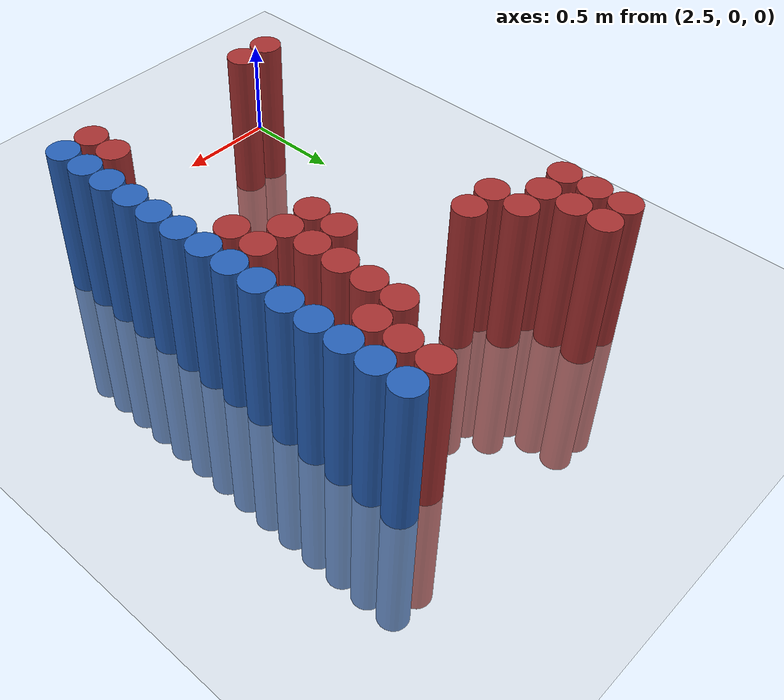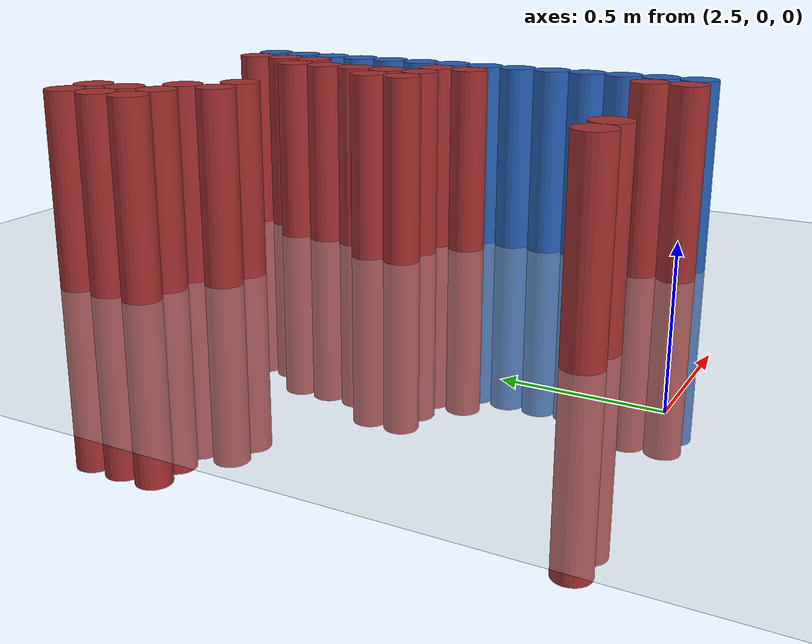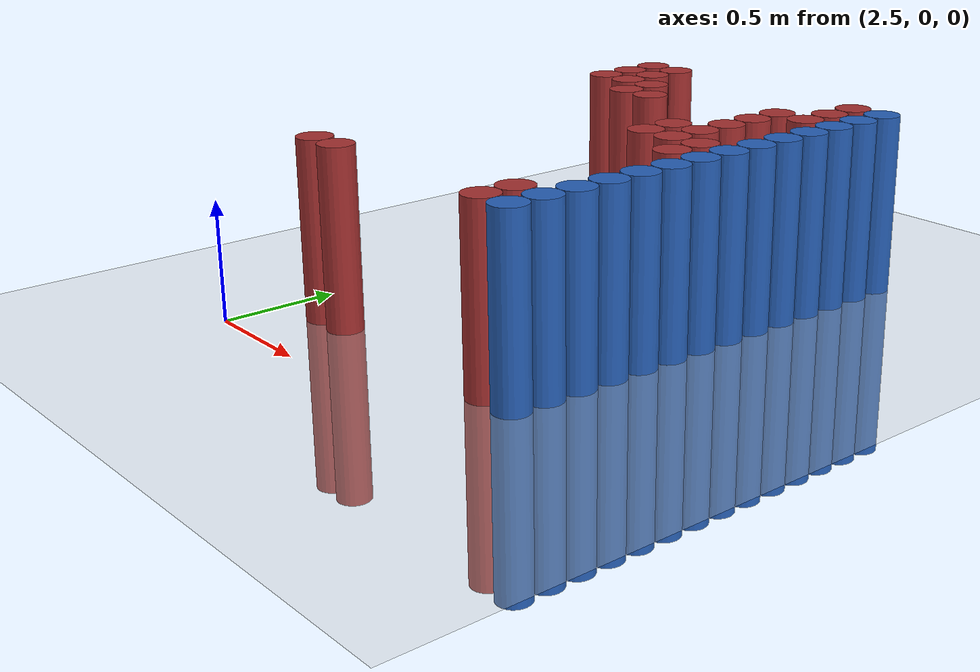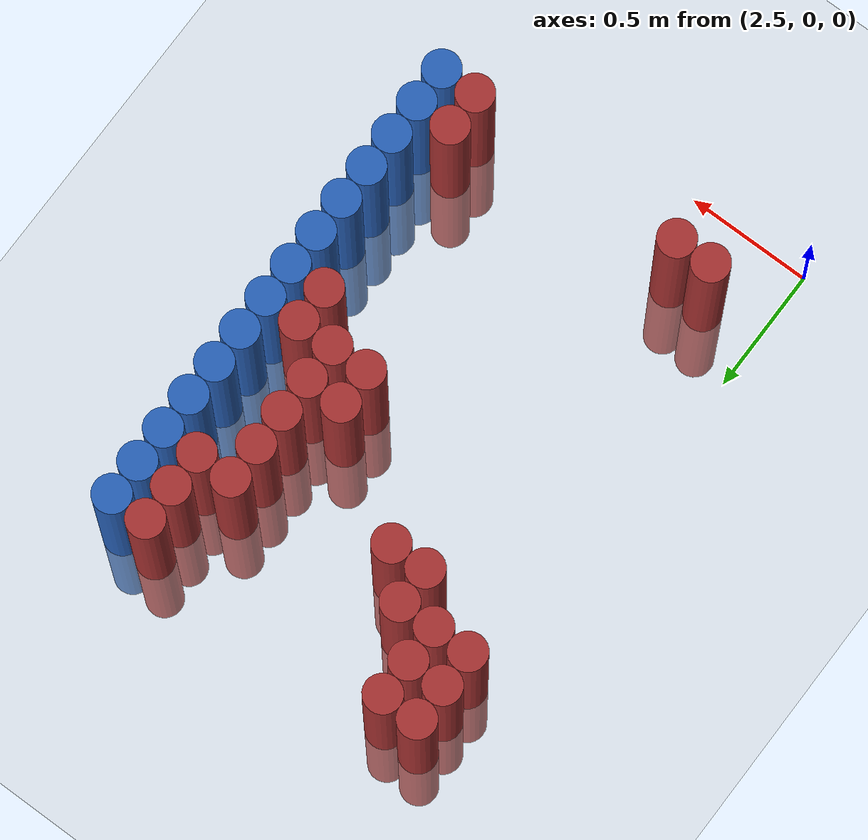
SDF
<sdf version="1.6">
 <world name="default">
  <model name="ground_plane">
   <static>1</static>
   <link name="link">
    <collision name="collision">
     <geometry><plane><normal>0 0 1</normal><size>100 100</size></plane></geometry>
     <surface><friction><ode><mu>100</mu><mu2>50</mu2></ode></friction></surface>
    </collision>
    <visual name="visual">
     <cast_shadows>0</cast_shadows>
     <geometry><plane><normal>0 0 1</normal><size>100 100</size></plane></geometry>
     <material>
      <script><uri>file://media/materials/scripts/gazebo.material</uri><name>Gazebo/Grey</name></script>
     </material>
    </visual>
   </link>
  </model>
  <model name="unit_cylinder_120">
   <static>1</static>
   <pose>3.925000 0.475000 0.000000 0.000000 0.000000 0.000000</pose>
   <link name="link">
    <inertial>
     <mass>1</mass>
     <inertia><ixx>0.145833</ixx><ixy>0</ixy><ixz>0</ixz><iyy>0.145833</iyy><iyz>0</iyz><izz>0.125</izz></inertia>
    </inertial>
    <collision name="collision">
     <geometry><cylinder><radius>0.075000</radius><length>1.5</length></cylinder></geometry>
    </collision>
    <visual name="visual">
     <geometry><cylinder><radius>0.075000</radius><length>1.5</length></cylinder></geometry>
     <material>
      <ambient>0.152000 0.379000 0.720000 1</ambient>
      <diffuse>0.152000 0.379000 0.720000 1</diffuse>
     </material>
     <material>
      <script><name>Gazebo/Grey</name><uri>file://media/materials/scripts/gazebo.material</uri></script>
     </material>
    </visual>
   </link>
  </model>
  <model name="unit_cylinder_122">
   <static>1</static>
   <pose>3.925000 0.625000 0.000000 0.000000 0.000000 0.000000</pose>
   <link name="link">
    <inertial>
     <mass>1</mass>
     <inertia><ixx>0.145833</ixx><ixy>0</ixy><ixz>0</ixz><iyy>0.145833</iyy><iyz>0</iyz><izz>0.125</izz></inertia>
    </inertial>
    <collision name="collision">
     <geometry><cylinder><radius>0.075000</radius><length>1.5</length></cylinder></geometry>
    </collision>
    <visual name="visual">
     <geometry><cylinder><radius>0.075000</radius><length>1.5</length></cylinder></geometry>
     <material>
      <ambient>0.152000 0.379000 0.720000 1</ambient>
      <diffuse>0.152000 0.379000 0.720000 1</diffuse>
     </material>
     <material>
      <script><name>Gazebo/Grey</name><uri>file://media/materials/scripts/gazebo.material</uri></script>
     </material>
    </visual>
   </link>
  </model>
  <model name="unit_cylinder_124">
   <static>1</static>
   <pose>3.925000 0.775000 0.000000 0.000000 0.000000 0.000000</pose>
   <link name="link">
    <inertial>
     <mass>1</mass>
     <inertia><ixx>0.145833</ixx><ixy>0</ixy><ixz>0</ixz><iyy>0.145833</iyy><iyz>0</iyz><izz>0.125</izz></inertia>
    </inertial>
    <collision name="collision">
     <geometry><cylinder><radius>0.075000</radius><length>1.5</length></cylinder></geometry>
    </collision>
    <visual name="visual">
     <geometry><cylinder><radius>0.075000</radius><length>1.5</length></cylinder></geometry>
     <material>
      <ambient>0.152000 0.379000 0.720000 1</ambient>
      <diffuse>0.152000 0.379000 0.720000 1</diffuse>
     </material>
     <material>
      <script><name>Gazebo/Grey</name><uri>file://media/materials/scripts/gazebo.material</uri></script>
     </material>
    </visual>
   </link>
  </model>
  <model name="unit_cylinder_126">
   <static>1</static>
   <pose>3.925000 0.925000 0.000000 0.000000 0.000000 0.000000</pose>
   <link name="link">
    <inertial>
     <mass>1</mass>
     <inertia><ixx>0.145833</ixx><ixy>0</ixy><ixz>0</ixz><iyy>0.145833</iyy><iyz>0</iyz><izz>0.125</izz></inertia>
    </inertial>
    <collision name="collision">
     <geometry><cylinder><radius>0.075000</radius><length>1.5</length></cylinder></geometry>
    </collision>
    <visual name="visual">
     <geometry><cylinder><radius>0.075000</radius><length>1.5</length></cylinder></geometry>
     <material>
      <ambient>0.152000 0.379000 0.720000 1</ambient>
      <diffuse>0.152000 0.379000 0.720000 1</diffuse>
     </material>
     <material>
      <script><name>Gazebo/Grey</name><uri>file://media/materials/scripts/gazebo.material</uri></script>
     </material>
    </visual>
   </link>
  </model>
  <model name="unit_cylinder_128">
   <static>1</static>
   <pose>3.925000 1.075000 0.000000 0.000000 0.000000 0.000000</pose>
   <link name="link">
    <inertial>
     <mass>1</mass>
     <inertia><ixx>0.145833</ixx><ixy>0</ixy><ixz>0</ixz><iyy>0.145833</iyy><iyz>0</iyz><izz>0.125</izz></inertia>
    </inertial>
    <collision name="collision">
     <geometry><cylinder><radius>0.075000</radius><length>1.5</length></cylinder></geometry>
    </collision>
    <visual name="visual">
     <geometry><cylinder><radius>0.075000</radius><length>1.5</length></cylinder></geometry>
     <material>
      <ambient>0.152000 0.379000 0.720000 1</ambient>
      <diffuse>0.152000 0.379000 0.720000 1</diffuse>
     </material>
     <material>
      <script><name>Gazebo/Grey</name><uri>file://media/materials/scripts/gazebo.material</uri></script>
     </material>
    </visual>
   </link>
  </model>
  <model name="unit_cylinder_130">
   <static>1</static>
   <pose>3.925000 1.225000 0.000000 0.000000 0.000000 0.000000</pose>
   <link name="link">
    <inertial>
     <mass>1</mass>
     <inertia><ixx>0.145833</ixx><ixy>0</ixy><ixz>0</ixz><iyy>0.145833</iyy><iyz>0</iyz><izz>0.125</izz></inertia>
    </inertial>
    <collision name="collision">
     <geometry><cylinder><radius>0.075000</radius><length>1.5</length></cylinder></geometry>
    </collision>
    <visual name="visual">
     <geometry><cylinder><radius>0.075000</radius><length>1.5</length></cylinder></geometry>
     <material>
      <ambient>0.152000 0.379000 0.720000 1</ambient>
      <diffuse>0.152000 0.379000 0.720000 1</diffuse>
     </material>
     <material>
      <script><name>Gazebo/Grey</name><uri>file://media/materials/scripts/gazebo.material</uri></script>
     </material>
    </visual>
   </link>
  </model>
  <model name="unit_cylinder_132">
   <static>1</static>
   <pose>3.925000 1.375000 0.000000 0.000000 0.000000 0.000000</pose>
   <link name="link">
    <inertial>
     <mass>1</mass>
     <inertia><ixx>0.145833</ixx><ixy>0</ixy><ixz>0</ixz><iyy>0.145833</iyy><iyz>0</iyz><izz>0.125</izz></inertia>
    </inertial>
    <collision name="collision">
     <geometry><cylinder><radius>0.075000</radius><length>1.5</length></cylinder></geometry>
    </collision>
    <visual name="visual">
     <geometry><cylinder><radius>0.075000</radius><length>1.5</length></cylinder></geometry>
     <material>
      <ambient>0.152000 0.379000 0.720000 1</ambient>
      <diffuse>0.152000 0.379000 0.720000 1</diffuse>
     </material>
     <material>
      <script><name>Gazebo/Grey</name><uri>file://media/materials/scripts/gazebo.material</uri></script>
     </material>
    </visual>
   </link>
  </model>
  <model name="unit_cylinder_134">
   <static>1</static>
   <pose>3.925000 1.525000 0.000000 0.000000 0.000000 0.000000</pose>
   <link name="link">
    <inertial>
     <mass>1</mass>
     <inertia><ixx>0.145833</ixx><ixy>0</ixy><ixz>0</ixz><iyy>0.145833</iyy><iyz>0</iyz><izz>0.125</izz></inertia>
    </inertial>
    <collision name="collision">
     <geometry><cylinder><radius>0.075000</radius><length>1.5</length></cylinder></geometry>
    </collision>
    <visual name="visual">
     <geometry><cylinder><radius>0.075000</radius><length>1.5</length></cylinder></geometry>
     <material>
      <ambient>0.152000 0.379000 0.720000 1</ambient>
      <diffuse>0.152000 0.379000 0.720000 1</diffuse>
     </material>
     <material>
      <script><name>Gazebo/Grey</name><uri>file://media/materials/scripts/gazebo.material</uri></script>
     </material>
    </visual>
   </link>
  </model>
  <model name="unit_cylinder_136">
   <static>1</static>
   <pose>3.925000 1.675000 0.000000 0.000000 0.000000 0.000000</pose>
   <link name="link">
    <inertial>
     <mass>1</mass>
     <inertia><ixx>0.145833</ixx><ixy>0</ixy><ixz>0</ixz><iyy>0.145833</iyy><iyz>0</iyz><izz>0.125</izz></inertia>
    </inertial>
    <collision name="collision">
     <geometry><cylinder><radius>0.075000</radius><length>1.5</length></cylinder></geometry>
    </collision>
    <visual name="visual">
     <geometry><cylinder><radius>0.075000</radius><length>1.5</length></cylinder></geometry>
     <material>
      <ambient>0.152000 0.379000 0.720000 1</ambient>
      <diffuse>0.152000 0.379000 0.720000 1</diffuse>
     </material>
     <material>
      <script><name>Gazebo/Grey</name><uri>file://media/materials/scripts/gazebo.material</uri></script>
     </material>
    </visual>
   </link>
  </model>
  <model name="unit_cylinder_138">
   <static>1</static>
   <pose>3.925000 1.825000 0.000000 0.000000 0.000000 0.000000</pose>
   <link name="link">
    <inertial>
     <mass>1</mass>
     <inertia><ixx>0.145833</ixx><ixy>0</ixy><ixz>0</ixz><iyy>0.145833</iyy><iyz>0</iyz><izz>0.125</izz></inertia>
    </inertial>
    <collision name="collision">
     <geometry><cylinder><radius>0.075000</radius><length>1.5</length></cylinder></geometry>
    </collision>
    <visual name="visual">
     <geometry><cylinder><radius>0.075000</radius><length>1.5</length></cylinder></geometry>
     <material>
      <ambient>0.152000 0.379000 0.720000 1</ambient>
      <diffuse>0.152000 0.379000 0.720000 1</diffuse>
     </material>
     <material>
      <script><name>Gazebo/Grey</name><uri>file://media/materials/scripts/gazebo.material</uri></script>
     </material>
    </visual>
   </link>
  </model>
  <model name="unit_cylinder_140">
   <static>1</static>
   <pose>3.925000 1.975000 0.000000 0.000000 0.000000 0.000000</pose>
   <link name="link">
    <inertial>
     <mass>1</mass>
     <inertia><ixx>0.145833</ixx><ixy>0</ixy><ixz>0</ixz><iyy>0.145833</iyy><iyz>0</iyz><izz>0.125</izz></inertia>
    </inertial>
    <collision name="collision">
     <geometry><cylinder><radius>0.075000</radius><length>1.5</length></cylinder></geometry>
    </collision>
    <visual name="visual">
     <geometry><cylinder><radius>0.075000</radius><length>1.5</length></cylinder></geometry>
     <material>
      <ambient>0.152000 0.379000 0.720000 1</ambient>
      <diffuse>0.152000 0.379000 0.720000 1</diffuse>
     </material>
     <material>
      <script><name>Gazebo/Grey</name><uri>file://media/materials/scripts/gazebo.material</uri></script>
     </material>
    </visual>
   </link>
  </model>
  <model name="unit_cylinder_142">
   <static>1</static>
   <pose>3.925000 2.125000 0.000000 0.000000 0.000000 0.000000</pose>
   <link name="link">
    <inertial>
     <mass>1</mass>
     <inertia><ixx>0.145833</ixx><ixy>0</ixy><ixz>0</ixz><iyy>0.145833</iyy><iyz>0</iyz><izz>0.125</izz></inertia>
    </inertial>
    <collision name="collision">
     <geometry><cylinder><radius>0.075000</radius><length>1.5</length></cylinder></geometry>
    </collision>
    <visual name="visual">
     <geometry><cylinder><radius>0.075000</radius><length>1.5</length></cylinder></geometry>
     <material>
      <ambient>0.152000 0.379000 0.720000 1</ambient>
      <diffuse>0.152000 0.379000 0.720000 1</diffuse>
     </material>
     <material>
      <script><name>Gazebo/Grey</name><uri>file://media/materials/scripts/gazebo.material</uri></script>
     </material>
    </visual>
   </link>
  </model>
  <model name="unit_cylinder_144">
   <static>1</static>
   <pose>3.925000 2.275000 0.000000 0.000000 0.000000 0.000000</pose>
   <link name="link">
    <inertial>
     <mass>1</mass>
     <inertia><ixx>0.145833</ixx><ixy>0</ixy><ixz>0</ixz><iyy>0.145833</iyy><iyz>0</iyz><izz>0.125</izz></inertia>
    </inertial>
    <collision name="collision">
     <geometry><cylinder><radius>0.075000</radius><length>1.5</length></cylinder></geometry>
    </collision>
    <visual name="visual">
     <geometry><cylinder><radius>0.075000</radius><length>1.5</length></cylinder></geometry>
     <material>
      <ambient>0.152000 0.379000 0.720000 1</ambient>
      <diffuse>0.152000 0.379000 0.720000 1</diffuse>
     </material>
     <material>
      <script><name>Gazebo/Grey</name><uri>file://media/materials/scripts/gazebo.material</uri></script>
     </material>
    </visual>
   </link>
  </model>
  <model name="unit_cylinder_377">
   <static>1</static>
   <pose>2.575000 1.975000 0.000000 0.000000 0.000000 0.000000</pose>
   <link name="link">
    <inertial>
     <mass>1</mass>
     <inertia><ixx>0.145833</ixx><ixy>0</ixy><ixz>0</ixz><iyy>0.145833</iyy><iyz>0</iyz><izz>0.125</izz></inertia>
    </inertial>
    <collision name="collision">
     <geometry><cylinder><radius>0.075000</radius><length>1.5</length></cylinder></geometry>
    </collision>
    <visual name="visual">
     <geometry><cylinder><radius>0.075000</radius><length>1.5</length></cylinder></geometry>
     <material>
      <ambient>0.648000 0.192000 0.192000 1</ambient>
      <diffuse>0.648000 0.192000 0.192000 1</diffuse>
     </material>
     <material>
      <script><name>Gazebo/Grey</name><uri>file://media/materials/scripts/gazebo.material</uri></script>
     </material>
    </visual>
   </link>
  </model>
  <model name="unit_cylinder_378">
   <static>1</static>
   <pose>2.575000 2.125000 0.000000 0.000000 0.000000 0.000000</pose>
   <link name="link">
    <inertial>
     <mass>1</mass>
     <inertia><ixx>0.145833</ixx><ixy>0</ixy><ixz>0</ixz><iyy>0.145833</iyy><iyz>0</iyz><izz>0.125</izz></inertia>
    </inertial>
    <collision name="collision">
     <geometry><cylinder><radius>0.075000</radius><length>1.5</length></cylinder></geometry>
    </collision>
    <visual name="visual">
     <geometry><cylinder><radius>0.075000</radius><length>1.5</length></cylinder></geometry>
     <material>
      <ambient>0.648000 0.192000 0.192000 1</ambient>
      <diffuse>0.648000 0.192000 0.192000 1</diffuse>
     </material>
     <material>
      <script><name>Gazebo/Grey</name><uri>file://media/materials/scripts/gazebo.material</uri></script>
     </material>
    </visual>
   </link>
  </model>
  <model name="unit_cylinder_379">
   <static>1</static>
   <pose>2.575000 2.275000 0.000000 0.000000 0.000000 0.000000</pose>
   <link name="link">
    <inertial>
     <mass>1</mass>
     <inertia><ixx>0.145833</ixx><ixy>0</ixy><ixz>0</ixz><iyy>0.145833</iyy><iyz>0</iyz><izz>0.125</izz></inertia>
    </inertial>
    <collision name="collision">
     <geometry><cylinder><radius>0.075000</radius><length>1.5</length></cylinder></geometry>
    </collision>
    <visual name="visual">
     <geometry><cylinder><radius>0.075000</radius><length>1.5</length></cylinder></geometry>
     <material>
      <ambient>0.648000 0.192000 0.192000 1</ambient>
      <diffuse>0.648000 0.192000 0.192000 1</diffuse>
     </material>
     <material>
      <script><name>Gazebo/Grey</name><uri>file://media/materials/scripts/gazebo.material</uri></script>
     </material>
    </visual>
   </link>
  </model>
  <model name="unit_cylinder_381">
   <static>1</static>
   <pose>2.725000 0.325000 0.000000 0.000000 0.000000 0.000000</pose>
   <link name="link">
    <inertial>
     <mass>1</mass>
     <inertia><ixx>0.145833</ixx><ixy>0</ixy><ixz>0</ixz><iyy>0.145833</iyy><iyz>0</iyz><izz>0.125</izz></inertia>
    </inertial>
    <collision name="collision">
     <geometry><cylinder><radius>0.075000</radius><length>1.5</length></cylinder></geometry>
    </collision>
    <visual name="visual">
     <geometry><cylinder><radius>0.075000</radius><length>1.5</length></cylinder></geometry>
     <material>
      <ambient>0.648000 0.192000 0.192000 1</ambient>
      <diffuse>0.648000 0.192000 0.192000 1</diffuse>
     </material>
     <material>
      <script><name>Gazebo/Grey</name><uri>file://media/materials/scripts/gazebo.material</uri></script>
     </material>
    </visual>
   </link>
  </model>
  <model name="unit_cylinder_382">
   <static>1</static>
   <pose>2.725000 1.975000 0.000000 0.000000 0.000000 0.000000</pose>
   <link name="link">
    <inertial>
     <mass>1</mass>
     <inertia><ixx>0.145833</ixx><ixy>0</ixy><ixz>0</ixz><iyy>0.145833</iyy><iyz>0</iyz><izz>0.125</izz></inertia>
    </inertial>
    <collision name="collision">
     <geometry><cylinder><radius>0.075000</radius><length>1.5</length></cylinder></geometry>
    </collision>
    <visual name="visual">
     <geometry><cylinder><radius>0.075000</radius><length>1.5</length></cylinder></geometry>
     <material>
      <ambient>0.648000 0.192000 0.192000 1</ambient>
      <diffuse>0.648000 0.192000 0.192000 1</diffuse>
     </material>
     <material>
      <script><name>Gazebo/Grey</name><uri>file://media/materials/scripts/gazebo.material</uri></script>
     </material>
    </visual>
   </link>
  </model>
  <model name="unit_cylinder_383">
   <static>1</static>
   <pose>2.725000 2.125000 0.000000 0.000000 0.000000 0.000000</pose>
   <link name="link">
    <inertial>
     <mass>1</mass>
     <inertia><ixx>0.145833</ixx><ixy>0</ixy><ixz>0</ixz><iyy>0.145833</iyy><iyz>0</iyz><izz>0.125</izz></inertia>
    </inertial>
    <collision name="collision">
     <geometry><cylinder><radius>0.075000</radius><length>1.5</length></cylinder></geometry>
    </collision>
    <visual name="visual">
     <geometry><cylinder><radius>0.075000</radius><length>1.5</length></cylinder></geometry>
     <material>
      <ambient>0.648000 0.192000 0.192000 1</ambient>
      <diffuse>0.648000 0.192000 0.192000 1</diffuse>
     </material>
     <material>
      <script><name>Gazebo/Grey</name><uri>file://media/materials/scripts/gazebo.material</uri></script>
     </material>
    </visual>
   </link>
  </model>
  <model name="unit_cylinder_384">
   <static>1</static>
   <pose>2.725000 2.275000 0.000000 0.000000 0.000000 0.000000</pose>
   <link name="link">
    <inertial>
     <mass>1</mass>
     <inertia><ixx>0.145833</ixx><ixy>0</ixy><ixz>0</ixz><iyy>0.145833</iyy><iyz>0</iyz><izz>0.125</izz></inertia>
    </inertial>
    <collision name="collision">
     <geometry><cylinder><radius>0.075000</radius><length>1.5</length></cylinder></geometry>
    </collision>
    <visual name="visual">
     <geometry><cylinder><radius>0.075000</radius><length>1.5</length></cylinder></geometry>
     <material>
      <ambient>0.648000 0.192000 0.192000 1</ambient>
      <diffuse>0.648000 0.192000 0.192000 1</diffuse>
     </material>
     <material>
      <script><name>Gazebo/Grey</name><uri>file://media/materials/scripts/gazebo.material</uri></script>
     </material>
    </visual>
   </link>
  </model>
  <model name="unit_cylinder_388">
   <static>1</static>
   <pose>2.875000 0.325000 0.000000 0.000000 0.000000 0.000000</pose>
   <link name="link">
    <inertial>
     <mass>1</mass>
     <inertia><ixx>0.145833</ixx><ixy>0</ixy><ixz>0</ixz><iyy>0.145833</iyy><iyz>0</iyz><izz>0.125</izz></inertia>
    </inertial>
    <collision name="collision">
     <geometry><cylinder><radius>0.075000</radius><length>1.5</length></cylinder></geometry>
    </collision>
    <visual name="visual">
     <geometry><cylinder><radius>0.075000</radius><length>1.5</length></cylinder></geometry>
     <material>
      <ambient>0.648000 0.192000 0.192000 1</ambient>
      <diffuse>0.648000 0.192000 0.192000 1</diffuse>
     </material>
     <material>
      <script><name>Gazebo/Grey</name><uri>file://media/materials/scripts/gazebo.material</uri></script>
     </material>
    </visual>
   </link>
  </model>
  <model name="unit_cylinder_389">
   <static>1</static>
   <pose>2.875000 1.825000 0.000000 0.000000 0.000000 0.000000</pose>
   <link name="link">
    <inertial>
     <mass>1</mass>
     <inertia><ixx>0.145833</ixx><ixy>0</ixy><ixz>0</ixz><iyy>0.145833</iyy><iyz>0</iyz><izz>0.125</izz></inertia>
    </inertial>
    <collision name="collision">
     <geometry><cylinder><radius>0.075000</radius><length>1.5</length></cylinder></geometry>
    </collision>
    <visual name="visual">
     <geometry><cylinder><radius>0.075000</radius><length>1.5</length></cylinder></geometry>
     <material>
      <ambient>0.648000 0.192000 0.192000 1</ambient>
      <diffuse>0.648000 0.192000 0.192000 1</diffuse>
     </material>
     <material>
      <script><name>Gazebo/Grey</name><uri>file://media/materials/scripts/gazebo.material</uri></script>
     </material>
    </visual>
   </link>
  </model>
  <model name="unit_cylinder_390">
   <static>1</static>
   <pose>2.875000 1.975000 0.000000 0.000000 0.000000 0.000000</pose>
   <link name="link">
    <inertial>
     <mass>1</mass>
     <inertia><ixx>0.145833</ixx><ixy>0</ixy><ixz>0</ixz><iyy>0.145833</iyy><iyz>0</iyz><izz>0.125</izz></inertia>
    </inertial>
    <collision name="collision">
     <geometry><cylinder><radius>0.075000</radius><length>1.5</length></cylinder></geometry>
    </collision>
    <visual name="visual">
     <geometry><cylinder><radius>0.075000</radius><length>1.5</length></cylinder></geometry>
     <material>
      <ambient>0.648000 0.192000 0.192000 1</ambient>
      <diffuse>0.648000 0.192000 0.192000 1</diffuse>
     </material>
     <material>
      <script><name>Gazebo/Grey</name><uri>file://media/materials/scripts/gazebo.material</uri></script>
     </material>
    </visual>
   </link>
  </model>
  <model name="unit_cylinder_393">
   <static>1</static>
   <pose>3.025000 1.825000 0.000000 0.000000 0.000000 0.000000</pose>
   <link name="link">
    <inertial>
     <mass>1</mass>
     <inertia><ixx>0.145833</ixx><ixy>0</ixy><ixz>0</ixz><iyy>0.145833</iyy><iyz>0</iyz><izz>0.125</izz></inertia>
    </inertial>
    <collision name="collision">
     <geometry><cylinder><radius>0.075000</radius><length>1.5</length></cylinder></geometry>
    </collision>
    <visual name="visual">
     <geometry><cylinder><radius>0.075000</radius><length>1.5</length></cylinder></geometry>
     <material>
      <ambient>0.648000 0.192000 0.192000 1</ambient>
      <diffuse>0.648000 0.192000 0.192000 1</diffuse>
     </material>
     <material>
      <script><name>Gazebo/Grey</name><uri>file://media/materials/scripts/gazebo.material</uri></script>
     </material>
    </visual>
   </link>
  </model>
  <model name="unit_cylinder_395">
   <static>1</static>
   <pose>3.475000 1.375000 0.000000 0.000000 0.000000 0.000000</pose>
   <link name="link">
    <inertial>
     <mass>1</mass>
     <inertia><ixx>0.145833</ixx><ixy>0</ixy><ixz>0</ixz><iyy>0.145833</iyy><iyz>0</iyz><izz>0.125</izz></inertia>
    </inertial>
    <collision name="collision">
     <geometry><cylinder><radius>0.075000</radius><length>1.5</length></cylinder></geometry>
    </collision>
    <visual name="visual">
     <geometry><cylinder><radius>0.075000</radius><length>1.5</length></cylinder></geometry>
     <material>
      <ambient>0.648000 0.192000 0.192000 1</ambient>
      <diffuse>0.648000 0.192000 0.192000 1</diffuse>
     </material>
     <material>
      <script><name>Gazebo/Grey</name><uri>file://media/materials/scripts/gazebo.material</uri></script>
     </material>
    </visual>
   </link>
  </model>
  <model name="unit_cylinder_396">
   <static>1</static>
   <pose>3.475000 1.525000 0.000000 0.000000 0.000000 0.000000</pose>
   <link name="link">
    <inertial>
     <mass>1</mass>
     <inertia><ixx>0.145833</ixx><ixy>0</ixy><ixz>0</ixz><iyy>0.145833</iyy><iyz>0</iyz><izz>0.125</izz></inertia>
    </inertial>
    <collision name="collision">
     <geometry><cylinder><radius>0.075000</radius><length>1.5</length></cylinder></geometry>
    </collision>
    <visual name="visual">
     <geometry><cylinder><radius>0.075000</radius><length>1.5</length></cylinder></geometry>
     <material>
      <ambient>0.648000 0.192000 0.192000 1</ambient>
      <diffuse>0.648000 0.192000 0.192000 1</diffuse>
     </material>
     <material>
      <script><name>Gazebo/Grey</name><uri>file://media/materials/scripts/gazebo.material</uri></script>
     </material>
    </visual>
   </link>
  </model>
  <model name="unit_cylinder_400">
   <static>1</static>
   <pose>3.625000 1.375000 0.000000 0.000000 0.000000 0.000000</pose>
   <link name="link">
    <inertial>
     <mass>1</mass>
     <inertia><ixx>0.145833</ixx><ixy>0</ixy><ixz>0</ixz><iyy>0.145833</iyy><iyz>0</iyz><izz>0.125</izz></inertia>
    </inertial>
    <collision name="collision">
     <geometry><cylinder><radius>0.075000</radius><length>1.5</length></cylinder></geometry>
    </collision>
    <visual name="visual">
     <geometry><cylinder><radius>0.075000</radius><length>1.5</length></cylinder></geometry>
     <material>
      <ambient>0.648000 0.192000 0.192000 1</ambient>
      <diffuse>0.648000 0.192000 0.192000 1</diffuse>
     </material>
     <material>
      <script><name>Gazebo/Grey</name><uri>file://media/materials/scripts/gazebo.material</uri></script>
     </material>
    </visual>
   </link>
  </model>
  <model name="unit_cylinder_401">
   <static>1</static>
   <pose>3.625000 1.525000 0.000000 0.000000 0.000000 0.000000</pose>
   <link name="link">
    <inertial>
     <mass>1</mass>
     <inertia><ixx>0.145833</ixx><ixy>0</ixy><ixz>0</ixz><iyy>0.145833</iyy><iyz>0</iyz><izz>0.125</izz></inertia>
    </inertial>
    <collision name="collision">
     <geometry><cylinder><radius>0.075000</radius><length>1.5</length></cylinder></geometry>
    </collision>
    <visual name="visual">
     <geometry><cylinder><radius>0.075000</radius><length>1.5</length></cylinder></geometry>
     <material>
      <ambient>0.648000 0.192000 0.192000 1</ambient>
      <diffuse>0.648000 0.192000 0.192000 1</diffuse>
     </material>
     <material>
      <script><name>Gazebo/Grey</name><uri>file://media/materials/scripts/gazebo.material</uri></script>
     </material>
    </visual>
   </link>
  </model>
  <model name="unit_cylinder_402">
   <static>1</static>
   <pose>3.625000 1.675000 0.000000 0.000000 0.000000 0.000000</pose>
   <link name="link">
    <inertial>
     <mass>1</mass>
     <inertia><ixx>0.145833</ixx><ixy>0</ixy><ixz>0</ixz><iyy>0.145833</iyy><iyz>0</iyz><izz>0.125</izz></inertia>
    </inertial>
    <collision name="collision">
     <geometry><cylinder><radius>0.075000</radius><length>1.5</length></cylinder></geometry>
    </collision>
    <visual name="visual">
     <geometry><cylinder><radius>0.075000</radius><length>1.5</length></cylinder></geometry>
     <material>
      <ambient>0.648000 0.192000 0.192000 1</ambient>
      <diffuse>0.648000 0.192000 0.192000 1</diffuse>
     </material>
     <material>
      <script><name>Gazebo/Grey</name><uri>file://media/materials/scripts/gazebo.material</uri></script>
     </material>
    </visual>
   </link>
  </model>
  <model name="unit_cylinder_403">
   <static>1</static>
   <pose>3.625000 1.825000 0.000000 0.000000 0.000000 0.000000</pose>
   <link name="link">
    <inertial>
     <mass>1</mass>
     <inertia><ixx>0.145833</ixx><ixy>0</ixy><ixz>0</ixz><iyy>0.145833</iyy><iyz>0</iyz><izz>0.125</izz></inertia>
    </inertial>
    <collision name="collision">
     <geometry><cylinder><radius>0.075000</radius><length>1.5</length></cylinder></geometry>
    </collision>
    <visual name="visual">
     <geometry><cylinder><radius>0.075000</radius><length>1.5</length></cylinder></geometry>
     <material>
      <ambient>0.648000 0.192000 0.192000 1</ambient>
      <diffuse>0.648000 0.192000 0.192000 1</diffuse>
     </material>
     <material>
      <script><name>Gazebo/Grey</name><uri>file://media/materials/scripts/gazebo.material</uri></script>
     </material>
    </visual>
   </link>
  </model>
  <model name="unit_cylinder_404">
   <static>1</static>
   <pose>3.625000 1.975000 0.000000 0.000000 0.000000 0.000000</pose>
   <link name="link">
    <inertial>
     <mass>1</mass>
     <inertia><ixx>0.145833</ixx><ixy>0</ixy><ixz>0</ixz><iyy>0.145833</iyy><iyz>0</iyz><izz>0.125</izz></inertia>
    </inertial>
    <collision name="collision">
     <geometry><cylinder><radius>0.075000</radius><length>1.5</length></cylinder></geometry>
    </collision>
    <visual name="visual">
     <geometry><cylinder><radius>0.075000</radius><length>1.5</length></cylinder></geometry>
     <material>
      <ambient>0.648000 0.192000 0.192000 1</ambient>
      <diffuse>0.648000 0.192000 0.192000 1</diffuse>
     </material>
     <material>
      <script><name>Gazebo/Grey</name><uri>file://media/materials/scripts/gazebo.material</uri></script>
     </material>
    </visual>
   </link>
  </model>
  <model name="unit_cylinder_414">
   <static>1</static>
   <pose>3.775000 0.325000 0.000000 0.000000 0.000000 0.000000</pose>
   <link name="link">
    <inertial>
     <mass>1</mass>
     <inertia><ixx>0.145833</ixx><ixy>0</ixy><ixz>0</ixz><iyy>0.145833</iyy><iyz>0</iyz><izz>0.125</izz></inertia>
    </inertial>
    <collision name="collision">
     <geometry><cylinder><radius>0.075000</radius><length>1.5</length></cylinder></geometry>
    </collision>
    <visual name="visual">
     <geometry><cylinder><radius>0.075000</radius><length>1.5</length></cylinder></geometry>
     <material>
      <ambient>0.648000 0.192000 0.192000 1</ambient>
      <diffuse>0.648000 0.192000 0.192000 1</diffuse>
     </material>
     <material>
      <script><name>Gazebo/Grey</name><uri>file://media/materials/scripts/gazebo.material</uri></script>
     </material>
    </visual>
   </link>
  </model>
  <model name="unit_cylinder_415">
   <static>1</static>
   <pose>3.775000 0.475000 0.000000 0.000000 0.000000 0.000000</pose>
   <link name="link">
    <inertial>
     <mass>1</mass>
     <inertia><ixx>0.145833</ixx><ixy>0</ixy><ixz>0</ixz><iyy>0.145833</iyy><iyz>0</iyz><izz>0.125</izz></inertia>
    </inertial>
    <collision name="collision">
     <geometry><cylinder><radius>0.075000</radius><length>1.5</length></cylinder></geometry>
    </collision>
    <visual name="visual">
     <geometry><cylinder><radius>0.075000</radius><length>1.5</length></cylinder></geometry>
     <material>
      <ambient>0.648000 0.192000 0.192000 1</ambient>
      <diffuse>0.648000 0.192000 0.192000 1</diffuse>
     </material>
     <material>
      <script><name>Gazebo/Grey</name><uri>file://media/materials/scripts/gazebo.material</uri></script>
     </material>
    </visual>
   </link>
  </model>
  <model name="unit_cylinder_416">
   <static>1</static>
   <pose>3.775000 1.225000 0.000000 0.000000 0.000000 0.000000</pose>
   <link name="link">
    <inertial>
     <mass>1</mass>
     <inertia><ixx>0.145833</ixx><ixy>0</ixy><ixz>0</ixz><iyy>0.145833</iyy><iyz>0</iyz><izz>0.125</izz></inertia>
    </inertial>
    <collision name="collision">
     <geometry><cylinder><radius>0.075000</radius><length>1.5</length></cylinder></geometry>
    </collision>
    <visual name="visual">
     <geometry><cylinder><radius>0.075000</radius><length>1.5</length></cylinder></geometry>
     <material>
      <ambient>0.648000 0.192000 0.192000 1</ambient>
      <diffuse>0.648000 0.192000 0.192000 1</diffuse>
     </material>
     <material>
      <script><name>Gazebo/Grey</name><uri>file://media/materials/scripts/gazebo.material</uri></script>
     </material>
    </visual>
   </link>
  </model>
  <model name="unit_cylinder_417">
   <static>1</static>
   <pose>3.775000 1.375000 0.000000 0.000000 0.000000 0.000000</pose>
   <link name="link">
    <inertial>
     <mass>1</mass>
     <inertia><ixx>0.145833</ixx><ixy>0</ixy><ixz>0</ixz><iyy>0.145833</iyy><iyz>0</iyz><izz>0.125</izz></inertia>
    </inertial>
    <collision name="collision">
     <geometry><cylinder><radius>0.075000</radius><length>1.5</length></cylinder></geometry>
    </collision>
    <visual name="visual">
     <geometry><cylinder><radius>0.075000</radius><length>1.5</length></cylinder></geometry>
     <material>
      <ambient>0.648000 0.192000 0.192000 1</ambient>
      <diffuse>0.648000 0.192000 0.192000 1</diffuse>
     </material>
     <material>
      <script><name>Gazebo/Grey</name><uri>file://media/materials/scripts/gazebo.material</uri></script>
     </material>
    </visual>
   </link>
  </model>
  <model name="unit_cylinder_418">
   <static>1</static>
   <pose>3.775000 1.975000 0.000000 0.000000 0.000000 0.000000</pose>
   <link name="link">
    <inertial>
     <mass>1</mass>
     <inertia><ixx>0.145833</ixx><ixy>0</ixy><ixz>0</ixz><iyy>0.145833</iyy><iyz>0</iyz><izz>0.125</izz></inertia>
    </inertial>
    <collision name="collision">
     <geometry><cylinder><radius>0.075000</radius><length>1.5</length></cylinder></geometry>
    </collision>
    <visual name="visual">
     <geometry><cylinder><radius>0.075000</radius><length>1.5</length></cylinder></geometry>
     <material>
      <ambient>0.648000 0.192000 0.192000 1</ambient>
      <diffuse>0.648000 0.192000 0.192000 1</diffuse>
     </material>
     <material>
      <script><name>Gazebo/Grey</name><uri>file://media/materials/scripts/gazebo.material</uri></script>
     </material>
    </visual>
   </link>
  </model>
  <model name="unit_cylinder_419">
   <static>1</static>
   <pose>3.775000 2.125000 0.000000 0.000000 0.000000 0.000000</pose>
   <link name="link">
    <inertial>
     <mass>1</mass>
     <inertia><ixx>0.145833</ixx><ixy>0</ixy><ixz>0</ixz><iyy>0.145833</iyy><iyz>0</iyz><izz>0.125</izz></inertia>
    </inertial>
    <collision name="collision">
     <geometry><cylinder><radius>0.075000</radius><length>1.5</length></cylinder></geometry>
    </collision>
    <visual name="visual">
     <geometry><cylinder><radius>0.075000</radius><length>1.5</length></cylinder></geometry>
     <material>
      <ambient>0.648000 0.192000 0.192000 1</ambient>
      <diffuse>0.648000 0.192000 0.192000 1</diffuse>
     </material>
     <material>
      <script><name>Gazebo/Grey</name><uri>file://media/materials/scripts/gazebo.material</uri></script>
     </material>
    </visual>
   </link>
  </model>
  <model name="unit_cylinder_420">
   <static>1</static>
   <pose>3.775000 2.275000 0.000000 0.000000 0.000000 0.000000</pose>
   <link name="link">
    <inertial>
     <mass>1</mass>
     <inertia><ixx>0.145833</ixx><ixy>0</ixy><ixz>0</ixz><iyy>0.145833</iyy><iyz>0</iyz><izz>0.125</izz></inertia>
    </inertial>
    <collision name="collision">
     <geometry><cylinder><radius>0.075000</radius><length>1.5</length></cylinder></geometry>
    </collision>
    <visual name="visual">
     <geometry><cylinder><radius>0.075000</radius><length>1.5</length></cylinder></geometry>
     <material>
      <ambient>0.648000 0.192000 0.192000 1</ambient>
      <diffuse>0.648000 0.192000 0.192000 1</diffuse>
     </material>
     <material>
      <script><name>Gazebo/Grey</name><uri>file://media/materials/scripts/gazebo.material</uri></script>
     </material>
    </visual>
   </link>
  </model>
  <model name="unit_cylinder_437">
   <static>1</static>
   <pose>3.925000 0.325000 0.000000 0.000000 0.000000 0.000000</pose>
   <link name="link">
    <inertial>
     <mass>1</mass>
     <inertia><ixx>0.145833</ixx><ixy>0</ixy><ixz>0</ixz><iyy>0.145833</iyy><iyz>0</iyz><izz>0.125</izz></inertia>
    </inertial>
    <collision name="collision">
     <geometry><cylinder><radius>0.075000</radius><length>1.5</length></cylinder></geometry>
    </collision>
    <visual name="visual">
     <geometry><cylinder><radius>0.075000</radius><length>1.5</length></cylinder></geometry>
     <material>
      <ambient>0.152000 0.379000 0.720000 1</ambient>
      <diffuse>0.152000 0.379000 0.720000 1</diffuse>
     </material>
     <material>
      <script><name>Gazebo/Grey</name><uri>file://media/materials/scripts/gazebo.material</uri></script>
     </material>
    </visual>
   </link>
  </model>
  <model name="unit_cylinder_438">
   <static>1</static>
   <pose>3.925000 0.475000 0.000000 0.000000 0.000000 0.000000</pose>
   <link name="link">
    <inertial>
     <mass>1</mass>
     <inertia><ixx>0.145833</ixx><ixy>0</ixy><ixz>0</ixz><iyy>0.145833</iyy><iyz>0</iyz><izz>0.125</izz></inertia>
    </inertial>
    <collision name="collision">
     <geometry><cylinder><radius>0.075000</radius><length>1.5</length></cylinder></geometry>
    </collision>
    <visual name="visual">
     <geometry><cylinder><radius>0.075000</radius><length>1.5</length></cylinder></geometry>
     <material>
      <ambient>0.152000 0.379000 0.720000 1</ambient>
      <diffuse>0.152000 0.379000 0.720000 1</diffuse>
     </material>
     <material>
      <script><name>Gazebo/Grey</name><uri>file://media/materials/scripts/gazebo.material</uri></script>
     </material>
    </visual>
   </link>
  </model>
  <model name="unit_cylinder_439">
   <static>1</static>
   <pose>3.925000 0.625000 0.000000 0.000000 0.000000 0.000000</pose>
   <link name="link">
    <inertial>
     <mass>1</mass>
     <inertia><ixx>0.145833</ixx><ixy>0</ixy><ixz>0</ixz><iyy>0.145833</iyy><iyz>0</iyz><izz>0.125</izz></inertia>
    </inertial>
    <collision name="collision">
     <geometry><cylinder><radius>0.075000</radius><length>1.5</length></cylinder></geometry>
    </collision>
    <visual name="visual">
     <geometry><cylinder><radius>0.075000</radius><length>1.5</length></cylinder></geometry>
     <material>
      <ambient>0.152000 0.379000 0.720000 1</ambient>
      <diffuse>0.152000 0.379000 0.720000 1</diffuse>
     </material>
     <material>
      <script><name>Gazebo/Grey</name><uri>file://media/materials/scripts/gazebo.material</uri></script>
     </material>
    </visual>
   </link>
  </model>
  <model name="unit_cylinder_440">
   <static>1</static>
   <pose>3.925000 0.775000 0.000000 0.000000 0.000000 0.000000</pose>
   <link name="link">
    <inertial>
     <mass>1</mass>
     <inertia><ixx>0.145833</ixx><ixy>0</ixy><ixz>0</ixz><iyy>0.145833</iyy><iyz>0</iyz><izz>0.125</izz></inertia>
    </inertial>
    <collision name="collision">
     <geometry><cylinder><radius>0.075000</radius><length>1.5</length></cylinder></geometry>
    </collision>
    <visual name="visual">
     <geometry><cylinder><radius>0.075000</radius><length>1.5</length></cylinder></geometry>
     <material>
      <ambient>0.152000 0.379000 0.720000 1</ambient>
      <diffuse>0.152000 0.379000 0.720000 1</diffuse>
     </material>
     <material>
      <script><name>Gazebo/Grey</name><uri>file://media/materials/scripts/gazebo.material</uri></script>
     </material>
    </visual>
   </link>
  </model>
  <model name="unit_cylinder_441">
   <static>1</static>
   <pose>3.925000 0.925000 0.000000 0.000000 0.000000 0.000000</pose>
   <link name="link">
    <inertial>
     <mass>1</mass>
     <inertia><ixx>0.145833</ixx><ixy>0</ixy><ixz>0</ixz><iyy>0.145833</iyy><iyz>0</iyz><izz>0.125</izz></inertia>
    </inertial>
    <collision name="collision">
     <geometry><cylinder><radius>0.075000</radius><length>1.5</length></cylinder></geometry>
    </collision>
    <visual name="visual">
     <geometry><cylinder><radius>0.075000</radius><length>1.5</length></cylinder></geometry>
     <material>
      <ambient>0.152000 0.379000 0.720000 1</ambient>
      <diffuse>0.152000 0.379000 0.720000 1</diffuse>
     </material>
     <material>
      <script><name>Gazebo/Grey</name><uri>file://media/materials/scripts/gazebo.material</uri></script>
     </material>
    </visual>
   </link>
  </model>
  <model name="unit_cylinder_442">
   <static>1</static>
   <pose>3.925000 1.075000 0.000000 0.000000 0.000000 0.000000</pose>
   <link name="link">
    <inertial>
     <mass>1</mass>
     <inertia><ixx>0.145833</ixx><ixy>0</ixy><ixz>0</ixz><iyy>0.145833</iyy><iyz>0</iyz><izz>0.125</izz></inertia>
    </inertial>
    <collision name="collision">
     <geometry><cylinder><radius>0.075000</radius><length>1.5</length></cylinder></geometry>
    </collision>
    <visual name="visual">
     <geometry><cylinder><radius>0.075000</radius><length>1.5</length></cylinder></geometry>
     <material>
      <ambient>0.152000 0.379000 0.720000 1</ambient>
      <diffuse>0.152000 0.379000 0.720000 1</diffuse>
     </material>
     <material>
      <script><name>Gazebo/Grey</name><uri>file://media/materials/scripts/gazebo.material</uri></script>
     </material>
    </visual>
   </link>
  </model>
  <model name="unit_cylinder_443">
   <static>1</static>
   <pose>3.925000 1.225000 0.000000 0.000000 0.000000 0.000000</pose>
   <link name="link">
    <inertial>
     <mass>1</mass>
     <inertia><ixx>0.145833</ixx><ixy>0</ixy><ixz>0</ixz><iyy>0.145833</iyy><iyz>0</iyz><izz>0.125</izz></inertia>
    </inertial>
    <collision name="collision">
     <geometry><cylinder><radius>0.075000</radius><length>1.5</length></cylinder></geometry>
    </collision>
    <visual name="visual">
     <geometry><cylinder><radius>0.075000</radius><length>1.5</length></cylinder></geometry>
     <material>
      <ambient>0.152000 0.379000 0.720000 1</ambient>
      <diffuse>0.152000 0.379000 0.720000 1</diffuse>
     </material>
     <material>
      <script><name>Gazebo/Grey</name><uri>file://media/materials/scripts/gazebo.material</uri></script>
     </material>
    </visual>
   </link>
  </model>
  <model name="unit_cylinder_444">
   <static>1</static>
   <pose>3.925000 1.375000 0.000000 0.000000 0.000000 0.000000</pose>
   <link name="link">
    <inertial>
     <mass>1</mass>
     <inertia><ixx>0.145833</ixx><ixy>0</ixy><ixz>0</ixz><iyy>0.145833</iyy><iyz>0</iyz><izz>0.125</izz></inertia>
    </inertial>
    <collision name="collision">
     <geometry><cylinder><radius>0.075000</radius><length>1.5</length></cylinder></geometry>
    </collision>
    <visual name="visual">
     <geometry><cylinder><radius>0.075000</radius><length>1.5</length></cylinder></geometry>
     <material>
      <ambient>0.152000 0.379000 0.720000 1</ambient>
      <diffuse>0.152000 0.379000 0.720000 1</diffuse>
     </material>
     <material>
      <script><name>Gazebo/Grey</name><uri>file://media/materials/scripts/gazebo.material</uri></script>
     </material>
    </visual>
   </link>
  </model>
  <model name="unit_cylinder_445">
   <static>1</static>
   <pose>3.925000 1.525000 0.000000 0.000000 0.000000 0.000000</pose>
   <link name="link">
    <inertial>
     <mass>1</mass>
     <inertia><ixx>0.145833</ixx><ixy>0</ixy><ixz>0</ixz><iyy>0.145833</iyy><iyz>0</iyz><izz>0.125</izz></inertia>
    </inertial>
    <collision name="collision">
     <geometry><cylinder><radius>0.075000</radius><length>1.5</length></cylinder></geometry>
    </collision>
    <visual name="visual">
     <geometry><cylinder><radius>0.075000</radius><length>1.5</length></cylinder></geometry>
     <material>
      <ambient>0.152000 0.379000 0.720000 1</ambient>
      <diffuse>0.152000 0.379000 0.720000 1</diffuse>
     </material>
     <material>
      <script><name>Gazebo/Grey</name><uri>file://media/materials/scripts/gazebo.material</uri></script>
     </material>
    </visual>
   </link>
  </model>
  <model name="unit_cylinder_446">
   <static>1</static>
   <pose>3.925000 1.675000 0.000000 0.000000 0.000000 0.000000</pose>
   <link name="link">
    <inertial>
     <mass>1</mass>
     <inertia><ixx>0.145833</ixx><ixy>0</ixy><ixz>0</ixz><iyy>0.145833</iyy><iyz>0</iyz><izz>0.125</izz></inertia>
    </inertial>
    <collision name="collision">
     <geometry><cylinder><radius>0.075000</radius><length>1.5</length></cylinder></geometry>
    </collision>
    <visual name="visual">
     <geometry><cylinder><radius>0.075000</radius><length>1.5</length></cylinder></geometry>
     <material>
      <ambient>0.152000 0.379000 0.720000 1</ambient>
      <diffuse>0.152000 0.379000 0.720000 1</diffuse>
     </material>
     <material>
      <script><name>Gazebo/Grey</name><uri>file://media/materials/scripts/gazebo.material</uri></script>
     </material>
    </visual>
   </link>
  </model>
  <model name="unit_cylinder_447">
   <static>1</static>
   <pose>3.925000 1.825000 0.000000 0.000000 0.000000 0.000000</pose>
   <link name="link">
    <inertial>
     <mass>1</mass>
     <inertia><ixx>0.145833</ixx><ixy>0</ixy><ixz>0</ixz><iyy>0.145833</iyy><iyz>0</iyz><izz>0.125</izz></inertia>
    </inertial>
    <collision name="collision">
     <geometry><cylinder><radius>0.075000</radius><length>1.5</length></cylinder></geometry>
    </collision>
    <visual name="visual">
     <geometry><cylinder><radius>0.075000</radius><length>1.5</length></cylinder></geometry>
     <material>
      <ambient>0.152000 0.379000 0.720000 1</ambient>
      <diffuse>0.152000 0.379000 0.720000 1</diffuse>
     </material>
     <material>
      <script><name>Gazebo/Grey</name><uri>file://media/materials/scripts/gazebo.material</uri></script>
     </material>
    </visual>
   </link>
  </model>
  <model name="unit_cylinder_448">
   <static>1</static>
   <pose>3.925000 1.975000 0.000000 0.000000 0.000000 0.000000</pose>
   <link name="link">
    <inertial>
     <mass>1</mass>
     <inertia><ixx>0.145833</ixx><ixy>0</ixy><ixz>0</ixz><iyy>0.145833</iyy><iyz>0</iyz><izz>0.125</izz></inertia>
    </inertial>
    <collision name="collision">
     <geometry><cylinder><radius>0.075000</radius><length>1.5</length></cylinder></geometry>
    </collision>
    <visual name="visual">
     <geometry><cylinder><radius>0.075000</radius><length>1.5</length></cylinder></geometry>
     <material>
      <ambient>0.152000 0.379000 0.720000 1</ambient>
      <diffuse>0.152000 0.379000 0.720000 1</diffuse>
     </material>
     <material>
      <script><name>Gazebo/Grey</name><uri>file://media/materials/scripts/gazebo.material</uri></script>
     </material>
    </visual>
   </link>
  </model>
  <model name="unit_cylinder_449">
   <static>1</static>
   <pose>3.925000 2.125000 0.000000 0.000000 0.000000 0.000000</pose>
   <link name="link">
    <inertial>
     <mass>1</mass>
     <inertia><ixx>0.145833</ixx><ixy>0</ixy><ixz>0</ixz><iyy>0.145833</iyy><iyz>0</iyz><izz>0.125</izz></inertia>
    </inertial>
    <collision name="collision">
     <geometry><cylinder><radius>0.075000</radius><length>1.5</length></cylinder></geometry>
    </collision>
    <visual name="visual">
     <geometry><cylinder><radius>0.075000</radius><length>1.5</length></cylinder></geometry>
     <material>
      <ambient>0.152000 0.379000 0.720000 1</ambient>
      <diffuse>0.152000 0.379000 0.720000 1</diffuse>
     </material>
     <material>
      <script><name>Gazebo/Grey</name><uri>file://media/materials/scripts/gazebo.material</uri></script>
     </material>
    </visual>
   </link>
  </model>
  <model name="unit_cylinder_450">
   <static>1</static>
   <pose>3.925000 2.275000 0.000000 0.000000 0.000000 0.000000</pose>
   <link name="link">
    <inertial>
     <mass>1</mass>
     <inertia><ixx>0.145833</ixx><ixy>0</ixy><ixz>0</ixz><iyy>0.145833</iyy><iyz>0</iyz><izz>0.125</izz></inertia>
    </inertial>
    <collision name="collision">
     <geometry><cylinder><radius>0.075000</radius><length>1.5</length></cylinder></geometry>
    </collision>
    <visual name="visual">
     <geometry><cylinder><radius>0.075000</radius><length>1.5</length></cylinder></geometry>
     <material>
      <ambient>0.152000 0.379000 0.720000 1</ambient>
      <diffuse>0.152000 0.379000 0.720000 1</diffuse>
     </material>
     <material>
      <script><name>Gazebo/Grey</name><uri>file://media/materials/scripts/gazebo.material</uri></script>
     </material>
    </visual>
   </link>
  </model>
 </world>
</sdf>
